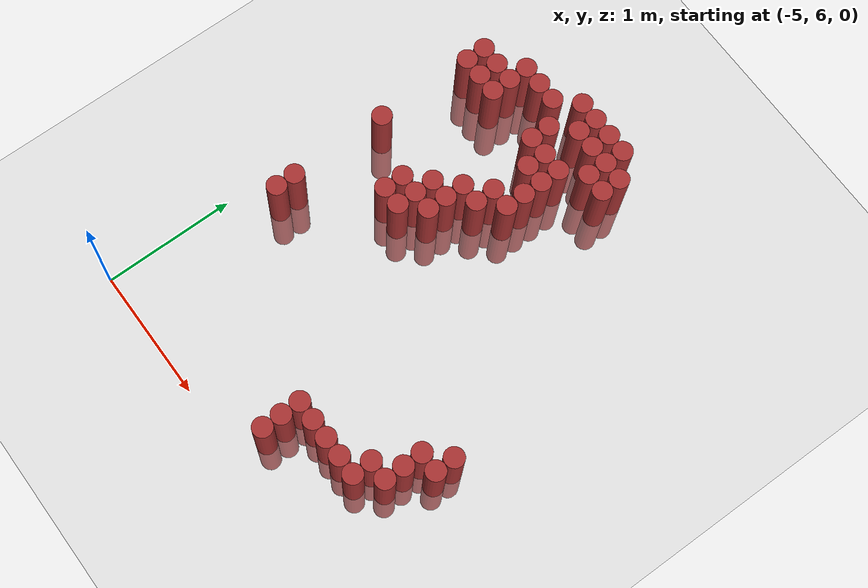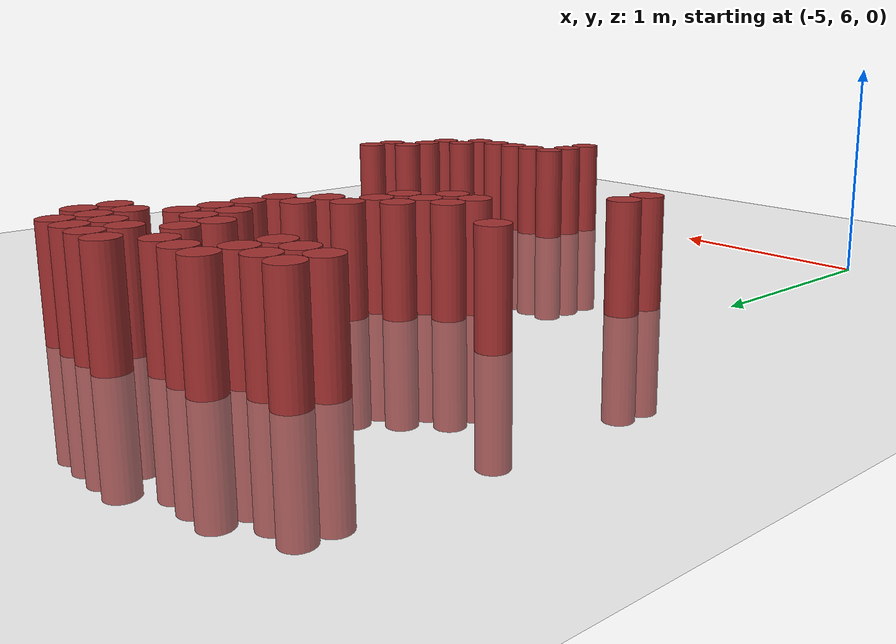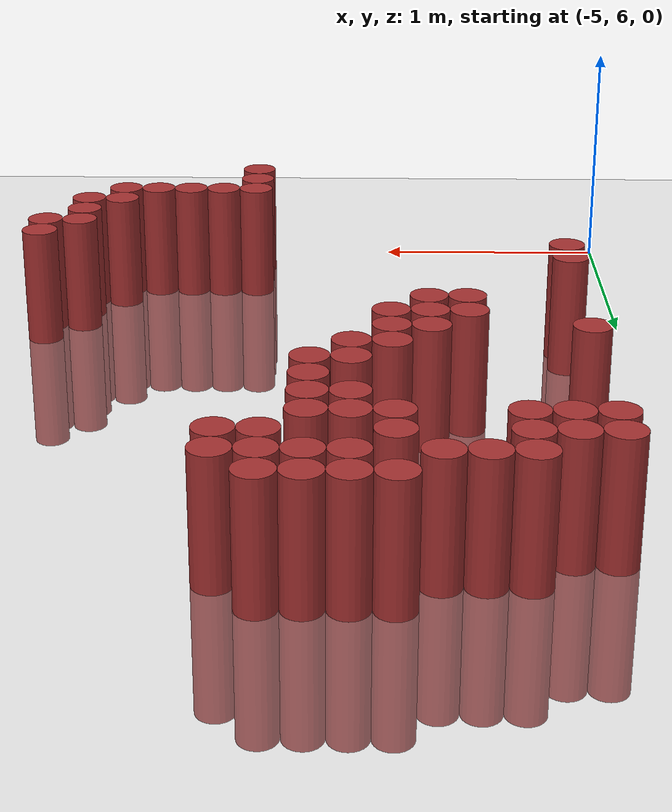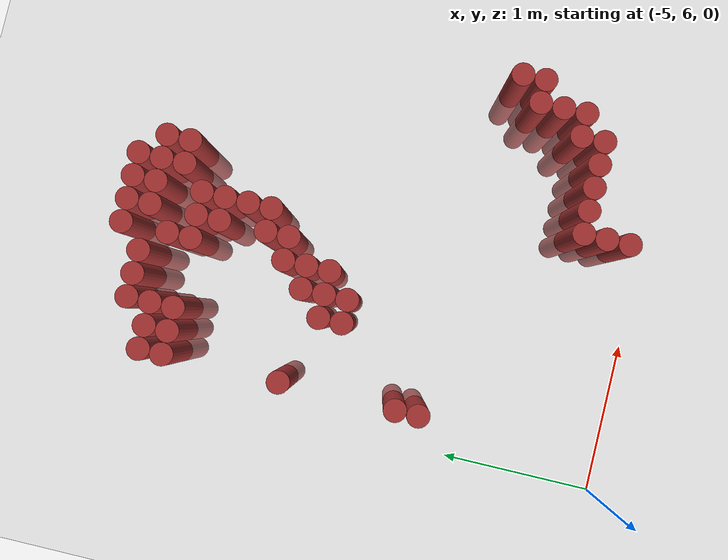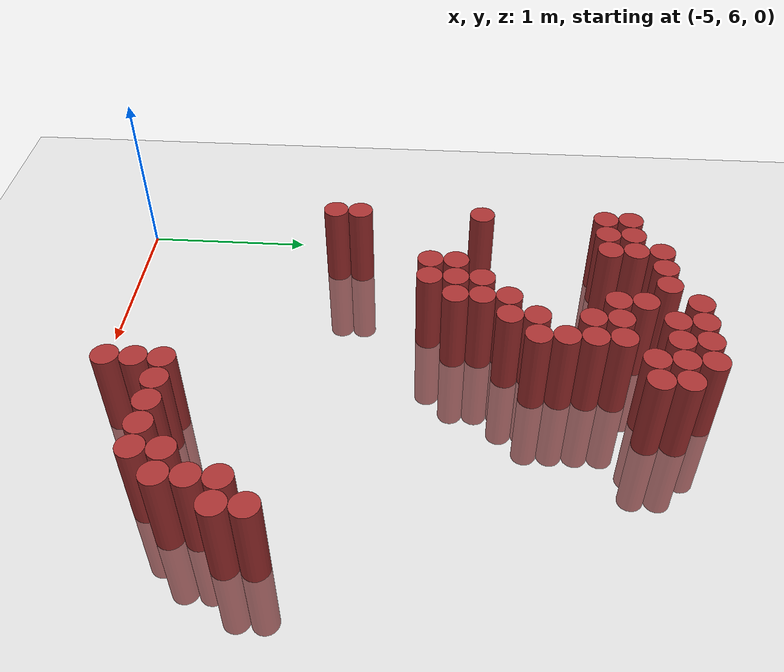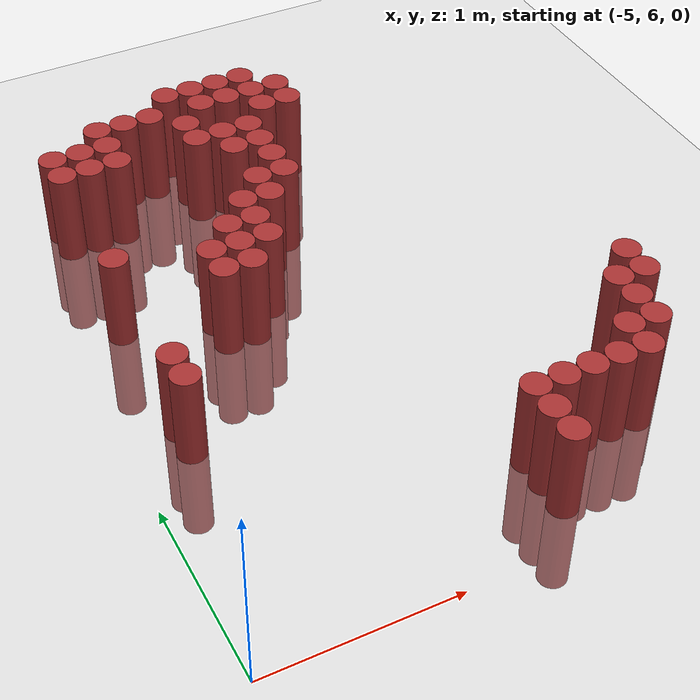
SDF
<sdf version="1.6">
 <world name="default">
  <model name="ground_plane">
   <static>1</static>
   <link name="link">
    <collision name="collision">
     <geometry><plane><normal>0 0 1</normal><size>100 100</size></plane></geometry>
     <surface><friction><ode><mu>100</mu><mu2>50</mu2></ode></friction></surface>
    </collision>
    <visual name="visual">
     <cast_shadows>0</cast_shadows>
     <geometry><plane><normal>0 0 1</normal><size>100 100</size></plane></geometry>
     <material>
      <script><uri>file://media/materials/scripts/gazebo.material</uri><name>Gazebo/Grey</name></script>
     </material>
    </visual>
   </link>
  </model>
  <model name="unit_cylinder_272">
   <static>1</static>
   <pose>-4.725000 7.275000 0.000000 0.000000 0.000000 0.000000</pose>
   <link name="link">
    <inertial>
     <mass>1</mass>
     <inertia><ixx>0.145833</ixx><ixy>0</ixy><ixz>0</ixz><iyy>0.145833</iyy><iyz>0</iyz><izz>0.125</izz></inertia>
    </inertial>
    <collision name="collision">
     <geometry><cylinder><radius>0.075000</radius><length>1</length></cylinder></geometry>
    </collision>
    <visual name="visual">
     <geometry><cylinder><radius>0.075000</radius><length>1</length></cylinder></geometry>
     <material>
      <ambient>0.648000 0.192000 0.192000 1</ambient>
      <diffuse>0.648000 0.192000 0.192000 1</diffuse>
     </material>
     <material>
      <script><name>Gazebo/Grey</name><uri>file://media/materials/scripts/gazebo.material</uri></script>
     </material>
    </visual>
   </link>
  </model>
  <model name="unit_cylinder_273">
   <static>1</static>
   <pose>-4.725000 7.425000 0.000000 0.000000 0.000000 0.000000</pose>
   <link name="link">
    <inertial>
     <mass>1</mass>
     <inertia><ixx>0.145833</ixx><ixy>0</ixy><ixz>0</ixz><iyy>0.145833</iyy><iyz>0</iyz><izz>0.125</izz></inertia>
    </inertial>
    <collision name="collision">
     <geometry><cylinder><radius>0.075000</radius><length>1</length></cylinder></geometry>
    </collision>
    <visual name="visual">
     <geometry><cylinder><radius>0.075000</radius><length>1</length></cylinder></geometry>
     <material>
      <ambient>0.648000 0.192000 0.192000 1</ambient>
      <diffuse>0.648000 0.192000 0.192000 1</diffuse>
     </material>
     <material>
      <script><name>Gazebo/Grey</name><uri>file://media/materials/scripts/gazebo.material</uri></script>
     </material>
    </visual>
   </link>
  </model>
  <model name="unit_cylinder_274">
   <static>1</static>
   <pose>-4.725000 8.175000 0.000000 0.000000 0.000000 0.000000</pose>
   <link name="link">
    <inertial>
     <mass>1</mass>
     <inertia><ixx>0.145833</ixx><ixy>0</ixy><ixz>0</ixz><iyy>0.145833</iyy><iyz>0</iyz><izz>0.125</izz></inertia>
    </inertial>
    <collision name="collision">
     <geometry><cylinder><radius>0.075000</radius><length>1</length></cylinder></geometry>
    </collision>
    <visual name="visual">
     <geometry><cylinder><radius>0.075000</radius><length>1</length></cylinder></geometry>
     <material>
      <ambient>0.648000 0.192000 0.192000 1</ambient>
      <diffuse>0.648000 0.192000 0.192000 1</diffuse>
     </material>
     <material>
      <script><name>Gazebo/Grey</name><uri>file://media/materials/scripts/gazebo.material</uri></script>
     </material>
    </visual>
   </link>
  </model>
  <model name="unit_cylinder_275">
   <static>1</static>
   <pose>-4.725000 8.925000 0.000000 0.000000 0.000000 0.000000</pose>
   <link name="link">
    <inertial>
     <mass>1</mass>
     <inertia><ixx>0.145833</ixx><ixy>0</ixy><ixz>0</ixz><iyy>0.145833</iyy><iyz>0</iyz><izz>0.125</izz></inertia>
    </inertial>
    <collision name="collision">
     <geometry><cylinder><radius>0.075000</radius><length>1</length></cylinder></geometry>
    </collision>
    <visual name="visual">
     <geometry><cylinder><radius>0.075000</radius><length>1</length></cylinder></geometry>
     <material>
      <ambient>0.648000 0.192000 0.192000 1</ambient>
      <diffuse>0.648000 0.192000 0.192000 1</diffuse>
     </material>
     <material>
      <script><name>Gazebo/Grey</name><uri>file://media/materials/scripts/gazebo.material</uri></script>
     </material>
    </visual>
   </link>
  </model>
  <model name="unit_cylinder_276">
   <static>1</static>
   <pose>-4.725000 9.075000 0.000000 0.000000 0.000000 0.000000</pose>
   <link name="link">
    <inertial>
     <mass>1</mass>
     <inertia><ixx>0.145833</ixx><ixy>0</ixy><ixz>0</ixz><iyy>0.145833</iyy><iyz>0</iyz><izz>0.125</izz></inertia>
    </inertial>
    <collision name="collision">
     <geometry><cylinder><radius>0.075000</radius><length>1</length></cylinder></geometry>
    </collision>
    <visual name="visual">
     <geometry><cylinder><radius>0.075000</radius><length>1</length></cylinder></geometry>
     <material>
      <ambient>0.648000 0.192000 0.192000 1</ambient>
      <diffuse>0.648000 0.192000 0.192000 1</diffuse>
     </material>
     <material>
      <script><name>Gazebo/Grey</name><uri>file://media/materials/scripts/gazebo.material</uri></script>
     </material>
    </visual>
   </link>
  </model>
  <model name="unit_cylinder_277">
   <static>1</static>
   <pose>-4.575000 8.925000 0.000000 0.000000 0.000000 0.000000</pose>
   <link name="link">
    <inertial>
     <mass>1</mass>
     <inertia><ixx>0.145833</ixx><ixy>0</ixy><ixz>0</ixz><iyy>0.145833</iyy><iyz>0</iyz><izz>0.125</izz></inertia>
    </inertial>
    <collision name="collision">
     <geometry><cylinder><radius>0.075000</radius><length>1</length></cylinder></geometry>
    </collision>
    <visual name="visual">
     <geometry><cylinder><radius>0.075000</radius><length>1</length></cylinder></geometry>
     <material>
      <ambient>0.648000 0.192000 0.192000 1</ambient>
      <diffuse>0.648000 0.192000 0.192000 1</diffuse>
     </material>
     <material>
      <script><name>Gazebo/Grey</name><uri>file://media/materials/scripts/gazebo.material</uri></script>
     </material>
    </visual>
   </link>
  </model>
  <model name="unit_cylinder_278">
   <static>1</static>
   <pose>-4.575000 9.075000 0.000000 0.000000 0.000000 0.000000</pose>
   <link name="link">
    <inertial>
     <mass>1</mass>
     <inertia><ixx>0.145833</ixx><ixy>0</ixy><ixz>0</ixz><iyy>0.145833</iyy><iyz>0</iyz><izz>0.125</izz></inertia>
    </inertial>
    <collision name="collision">
     <geometry><cylinder><radius>0.075000</radius><length>1</length></cylinder></geometry>
    </collision>
    <visual name="visual">
     <geometry><cylinder><radius>0.075000</radius><length>1</length></cylinder></geometry>
     <material>
      <ambient>0.648000 0.192000 0.192000 1</ambient>
      <diffuse>0.648000 0.192000 0.192000 1</diffuse>
     </material>
     <material>
      <script><name>Gazebo/Grey</name><uri>file://media/materials/scripts/gazebo.material</uri></script>
     </material>
    </visual>
   </link>
  </model>
  <model name="unit_cylinder_279">
   <static>1</static>
   <pose>-4.425000 8.925000 0.000000 0.000000 0.000000 0.000000</pose>
   <link name="link">
    <inertial>
     <mass>1</mass>
     <inertia><ixx>0.145833</ixx><ixy>0</ixy><ixz>0</ixz><iyy>0.145833</iyy><iyz>0</iyz><izz>0.125</izz></inertia>
    </inertial>
    <collision name="collision">
     <geometry><cylinder><radius>0.075000</radius><length>1</length></cylinder></geometry>
    </collision>
    <visual name="visual">
     <geometry><cylinder><radius>0.075000</radius><length>1</length></cylinder></geometry>
     <material>
      <ambient>0.648000 0.192000 0.192000 1</ambient>
      <diffuse>0.648000 0.192000 0.192000 1</diffuse>
     </material>
     <material>
      <script><name>Gazebo/Grey</name><uri>file://media/materials/scripts/gazebo.material</uri></script>
     </material>
    </visual>
   </link>
  </model>
  <model name="unit_cylinder_280">
   <static>1</static>
   <pose>-4.425000 9.075000 0.000000 0.000000 0.000000 0.000000</pose>
   <link name="link">
    <inertial>
     <mass>1</mass>
     <inertia><ixx>0.145833</ixx><ixy>0</ixy><ixz>0</ixz><iyy>0.145833</iyy><iyz>0</iyz><izz>0.125</izz></inertia>
    </inertial>
    <collision name="collision">
     <geometry><cylinder><radius>0.075000</radius><length>1</length></cylinder></geometry>
    </collision>
    <visual name="visual">
     <geometry><cylinder><radius>0.075000</radius><length>1</length></cylinder></geometry>
     <material>
      <ambient>0.648000 0.192000 0.192000 1</ambient>
      <diffuse>0.648000 0.192000 0.192000 1</diffuse>
     </material>
     <material>
      <script><name>Gazebo/Grey</name><uri>file://media/materials/scripts/gazebo.material</uri></script>
     </material>
    </visual>
   </link>
  </model>
  <model name="unit_cylinder_281">
   <static>1</static>
   <pose>-4.425000 9.225000 0.000000 0.000000 0.000000 0.000000</pose>
   <link name="link">
    <inertial>
     <mass>1</mass>
     <inertia><ixx>0.145833</ixx><ixy>0</ixy><ixz>0</ixz><iyy>0.145833</iyy><iyz>0</iyz><izz>0.125</izz></inertia>
    </inertial>
    <collision name="collision">
     <geometry><cylinder><radius>0.075000</radius><length>1</length></cylinder></geometry>
    </collision>
    <visual name="visual">
     <geometry><cylinder><radius>0.075000</radius><length>1</length></cylinder></geometry>
     <material>
      <ambient>0.648000 0.192000 0.192000 1</ambient>
      <diffuse>0.648000 0.192000 0.192000 1</diffuse>
     </material>
     <material>
      <script><name>Gazebo/Grey</name><uri>file://media/materials/scripts/gazebo.material</uri></script>
     </material>
    </visual>
   </link>
  </model>
  <model name="unit_cylinder_284">
   <static>1</static>
   <pose>-4.275000 7.875000 0.000000 0.000000 0.000000 0.000000</pose>
   <link name="link">
    <inertial>
     <mass>1</mass>
     <inertia><ixx>0.145833</ixx><ixy>0</ixy><ixz>0</ixz><iyy>0.145833</iyy><iyz>0</iyz><izz>0.125</izz></inertia>
    </inertial>
    <collision name="collision">
     <geometry><cylinder><radius>0.075000</radius><length>1</length></cylinder></geometry>
    </collision>
    <visual name="visual">
     <geometry><cylinder><radius>0.075000</radius><length>1</length></cylinder></geometry>
     <material>
      <ambient>0.648000 0.192000 0.192000 1</ambient>
      <diffuse>0.648000 0.192000 0.192000 1</diffuse>
     </material>
     <material>
      <script><name>Gazebo/Grey</name><uri>file://media/materials/scripts/gazebo.material</uri></script>
     </material>
    </visual>
   </link>
  </model>
  <model name="unit_cylinder_285">
   <static>1</static>
   <pose>-4.275000 8.025000 0.000000 0.000000 0.000000 0.000000</pose>
   <link name="link">
    <inertial>
     <mass>1</mass>
     <inertia><ixx>0.145833</ixx><ixy>0</ixy><ixz>0</ixz><iyy>0.145833</iyy><iyz>0</iyz><izz>0.125</izz></inertia>
    </inertial>
    <collision name="collision">
     <geometry><cylinder><radius>0.075000</radius><length>1</length></cylinder></geometry>
    </collision>
    <visual name="visual">
     <geometry><cylinder><radius>0.075000</radius><length>1</length></cylinder></geometry>
     <material>
      <ambient>0.648000 0.192000 0.192000 1</ambient>
      <diffuse>0.648000 0.192000 0.192000 1</diffuse>
     </material>
     <material>
      <script><name>Gazebo/Grey</name><uri>file://media/materials/scripts/gazebo.material</uri></script>
     </material>
    </visual>
   </link>
  </model>
  <model name="unit_cylinder_286">
   <static>1</static>
   <pose>-4.275000 9.225000 0.000000 0.000000 0.000000 0.000000</pose>
   <link name="link">
    <inertial>
     <mass>1</mass>
     <inertia><ixx>0.145833</ixx><ixy>0</ixy><ixz>0</ixz><iyy>0.145833</iyy><iyz>0</iyz><izz>0.125</izz></inertia>
    </inertial>
    <collision name="collision">
     <geometry><cylinder><radius>0.075000</radius><length>1</length></cylinder></geometry>
    </collision>
    <visual name="visual">
     <geometry><cylinder><radius>0.075000</radius><length>1</length></cylinder></geometry>
     <material>
      <ambient>0.648000 0.192000 0.192000 1</ambient>
      <diffuse>0.648000 0.192000 0.192000 1</diffuse>
     </material>
     <material>
      <script><name>Gazebo/Grey</name><uri>file://media/materials/scripts/gazebo.material</uri></script>
     </material>
    </visual>
   </link>
  </model>
  <model name="unit_cylinder_289">
   <static>1</static>
   <pose>-4.125000 7.875000 0.000000 0.000000 0.000000 0.000000</pose>
   <link name="link">
    <inertial>
     <mass>1</mass>
     <inertia><ixx>0.145833</ixx><ixy>0</ixy><ixz>0</ixz><iyy>0.145833</iyy><iyz>0</iyz><izz>0.125</izz></inertia>
    </inertial>
    <collision name="collision">
     <geometry><cylinder><radius>0.075000</radius><length>1</length></cylinder></geometry>
    </collision>
    <visual name="visual">
     <geometry><cylinder><radius>0.075000</radius><length>1</length></cylinder></geometry>
     <material>
      <ambient>0.648000 0.192000 0.192000 1</ambient>
      <diffuse>0.648000 0.192000 0.192000 1</diffuse>
     </material>
     <material>
      <script><name>Gazebo/Grey</name><uri>file://media/materials/scripts/gazebo.material</uri></script>
     </material>
    </visual>
   </link>
  </model>
  <model name="unit_cylinder_290">
   <static>1</static>
   <pose>-4.125000 8.025000 0.000000 0.000000 0.000000 0.000000</pose>
   <link name="link">
    <inertial>
     <mass>1</mass>
     <inertia><ixx>0.145833</ixx><ixy>0</ixy><ixz>0</ixz><iyy>0.145833</iyy><iyz>0</iyz><izz>0.125</izz></inertia>
    </inertial>
    <collision name="collision">
     <geometry><cylinder><radius>0.075000</radius><length>1</length></cylinder></geometry>
    </collision>
    <visual name="visual">
     <geometry><cylinder><radius>0.075000</radius><length>1</length></cylinder></geometry>
     <material>
      <ambient>0.648000 0.192000 0.192000 1</ambient>
      <diffuse>0.648000 0.192000 0.192000 1</diffuse>
     </material>
     <material>
      <script><name>Gazebo/Grey</name><uri>file://media/materials/scripts/gazebo.material</uri></script>
     </material>
    </visual>
   </link>
  </model>
  <model name="unit_cylinder_291">
   <static>1</static>
   <pose>-4.125000 8.175000 0.000000 0.000000 0.000000 0.000000</pose>
   <link name="link">
    <inertial>
     <mass>1</mass>
     <inertia><ixx>0.145833</ixx><ixy>0</ixy><ixz>0</ixz><iyy>0.145833</iyy><iyz>0</iyz><izz>0.125</izz></inertia>
    </inertial>
    <collision name="collision">
     <geometry><cylinder><radius>0.075000</radius><length>1</length></cylinder></geometry>
    </collision>
    <visual name="visual">
     <geometry><cylinder><radius>0.075000</radius><length>1</length></cylinder></geometry>
     <material>
      <ambient>0.648000 0.192000 0.192000 1</ambient>
      <diffuse>0.648000 0.192000 0.192000 1</diffuse>
     </material>
     <material>
      <script><name>Gazebo/Grey</name><uri>file://media/materials/scripts/gazebo.material</uri></script>
     </material>
    </visual>
   </link>
  </model>
  <model name="unit_cylinder_292">
   <static>1</static>
   <pose>-4.125000 9.225000 0.000000 0.000000 0.000000 0.000000</pose>
   <link name="link">
    <inertial>
     <mass>1</mass>
     <inertia><ixx>0.145833</ixx><ixy>0</ixy><ixz>0</ixz><iyy>0.145833</iyy><iyz>0</iyz><izz>0.125</izz></inertia>
    </inertial>
    <collision name="collision">
     <geometry><cylinder><radius>0.075000</radius><length>1</length></cylinder></geometry>
    </collision>
    <visual name="visual">
     <geometry><cylinder><radius>0.075000</radius><length>1</length></cylinder></geometry>
     <material>
      <ambient>0.648000 0.192000 0.192000 1</ambient>
      <diffuse>0.648000 0.192000 0.192000 1</diffuse>
     </material>
     <material>
      <script><name>Gazebo/Grey</name><uri>file://media/materials/scripts/gazebo.material</uri></script>
     </material>
    </visual>
   </link>
  </model>
  <model name="unit_cylinder_295">
   <static>1</static>
   <pose>-3.975000 8.025000 0.000000 0.000000 0.000000 0.000000</pose>
   <link name="link">
    <inertial>
     <mass>1</mass>
     <inertia><ixx>0.145833</ixx><ixy>0</ixy><ixz>0</ixz><iyy>0.145833</iyy><iyz>0</iyz><izz>0.125</izz></inertia>
    </inertial>
    <collision name="collision">
     <geometry><cylinder><radius>0.075000</radius><length>1</length></cylinder></geometry>
    </collision>
    <visual name="visual">
     <geometry><cylinder><radius>0.075000</radius><length>1</length></cylinder></geometry>
     <material>
      <ambient>0.648000 0.192000 0.192000 1</ambient>
      <diffuse>0.648000 0.192000 0.192000 1</diffuse>
     </material>
     <material>
      <script><name>Gazebo/Grey</name><uri>file://media/materials/scripts/gazebo.material</uri></script>
     </material>
    </visual>
   </link>
  </model>
  <model name="unit_cylinder_296">
   <static>1</static>
   <pose>-3.975000 8.175000 0.000000 0.000000 0.000000 0.000000</pose>
   <link name="link">
    <inertial>
     <mass>1</mass>
     <inertia><ixx>0.145833</ixx><ixy>0</ixy><ixz>0</ixz><iyy>0.145833</iyy><iyz>0</iyz><izz>0.125</izz></inertia>
    </inertial>
    <collision name="collision">
     <geometry><cylinder><radius>0.075000</radius><length>1</length></cylinder></geometry>
    </collision>
    <visual name="visual">
     <geometry><cylinder><radius>0.075000</radius><length>1</length></cylinder></geometry>
     <material>
      <ambient>0.648000 0.192000 0.192000 1</ambient>
      <diffuse>0.648000 0.192000 0.192000 1</diffuse>
     </material>
     <material>
      <script><name>Gazebo/Grey</name><uri>file://media/materials/scripts/gazebo.material</uri></script>
     </material>
    </visual>
   </link>
  </model>
  <model name="unit_cylinder_297">
   <static>1</static>
   <pose>-3.975000 8.325000 0.000000 0.000000 0.000000 0.000000</pose>
   <link name="link">
    <inertial>
     <mass>1</mass>
     <inertia><ixx>0.145833</ixx><ixy>0</ixy><ixz>0</ixz><iyy>0.145833</iyy><iyz>0</iyz><izz>0.125</izz></inertia>
    </inertial>
    <collision name="collision">
     <geometry><cylinder><radius>0.075000</radius><length>1</length></cylinder></geometry>
    </collision>
    <visual name="visual">
     <geometry><cylinder><radius>0.075000</radius><length>1</length></cylinder></geometry>
     <material>
      <ambient>0.648000 0.192000 0.192000 1</ambient>
      <diffuse>0.648000 0.192000 0.192000 1</diffuse>
     </material>
     <material>
      <script><name>Gazebo/Grey</name><uri>file://media/materials/scripts/gazebo.material</uri></script>
     </material>
    </visual>
   </link>
  </model>
  <model name="unit_cylinder_298">
   <static>1</static>
   <pose>-3.975000 8.925000 0.000000 0.000000 0.000000 0.000000</pose>
   <link name="link">
    <inertial>
     <mass>1</mass>
     <inertia><ixx>0.145833</ixx><ixy>0</ixy><ixz>0</ixz><iyy>0.145833</iyy><iyz>0</iyz><izz>0.125</izz></inertia>
    </inertial>
    <collision name="collision">
     <geometry><cylinder><radius>0.075000</radius><length>1</length></cylinder></geometry>
    </collision>
    <visual name="visual">
     <geometry><cylinder><radius>0.075000</radius><length>1</length></cylinder></geometry>
     <material>
      <ambient>0.648000 0.192000 0.192000 1</ambient>
      <diffuse>0.648000 0.192000 0.192000 1</diffuse>
     </material>
     <material>
      <script><name>Gazebo/Grey</name><uri>file://media/materials/scripts/gazebo.material</uri></script>
     </material>
    </visual>
   </link>
  </model>
  <model name="unit_cylinder_299">
   <static>1</static>
   <pose>-3.975000 9.075000 0.000000 0.000000 0.000000 0.000000</pose>
   <link name="link">
    <inertial>
     <mass>1</mass>
     <inertia><ixx>0.145833</ixx><ixy>0</ixy><ixz>0</ixz><iyy>0.145833</iyy><iyz>0</iyz><izz>0.125</izz></inertia>
    </inertial>
    <collision name="collision">
     <geometry><cylinder><radius>0.075000</radius><length>1</length></cylinder></geometry>
    </collision>
    <visual name="visual">
     <geometry><cylinder><radius>0.075000</radius><length>1</length></cylinder></geometry>
     <material>
      <ambient>0.648000 0.192000 0.192000 1</ambient>
      <diffuse>0.648000 0.192000 0.192000 1</diffuse>
     </material>
     <material>
      <script><name>Gazebo/Grey</name><uri>file://media/materials/scripts/gazebo.material</uri></script>
     </material>
    </visual>
   </link>
  </model>
  <model name="unit_cylinder_300">
   <static>1</static>
   <pose>-3.975000 9.375000 0.000000 0.000000 0.000000 0.000000</pose>
   <link name="link">
    <inertial>
     <mass>1</mass>
     <inertia><ixx>0.145833</ixx><ixy>0</ixy><ixz>0</ixz><iyy>0.145833</iyy><iyz>0</iyz><izz>0.125</izz></inertia>
    </inertial>
    <collision name="collision">
     <geometry><cylinder><radius>0.075000</radius><length>1</length></cylinder></geometry>
    </collision>
    <visual name="visual">
     <geometry><cylinder><radius>0.075000</radius><length>1</length></cylinder></geometry>
     <material>
      <ambient>0.648000 0.192000 0.192000 1</ambient>
      <diffuse>0.648000 0.192000 0.192000 1</diffuse>
     </material>
     <material>
      <script><name>Gazebo/Grey</name><uri>file://media/materials/scripts/gazebo.material</uri></script>
     </material>
    </visual>
   </link>
  </model>
  <model name="unit_cylinder_304">
   <static>1</static>
   <pose>-3.825000 8.325000 0.000000 0.000000 0.000000 0.000000</pose>
   <link name="link">
    <inertial>
     <mass>1</mass>
     <inertia><ixx>0.145833</ixx><ixy>0</ixy><ixz>0</ixz><iyy>0.145833</iyy><iyz>0</iyz><izz>0.125</izz></inertia>
    </inertial>
    <collision name="collision">
     <geometry><cylinder><radius>0.075000</radius><length>1</length></cylinder></geometry>
    </collision>
    <visual name="visual">
     <geometry><cylinder><radius>0.075000</radius><length>1</length></cylinder></geometry>
     <material>
      <ambient>0.648000 0.192000 0.192000 1</ambient>
      <diffuse>0.648000 0.192000 0.192000 1</diffuse>
     </material>
     <material>
      <script><name>Gazebo/Grey</name><uri>file://media/materials/scripts/gazebo.material</uri></script>
     </material>
    </visual>
   </link>
  </model>
  <model name="unit_cylinder_305">
   <static>1</static>
   <pose>-3.825000 8.475000 0.000000 0.000000 0.000000 0.000000</pose>
   <link name="link">
    <inertial>
     <mass>1</mass>
     <inertia><ixx>0.145833</ixx><ixy>0</ixy><ixz>0</ixz><iyy>0.145833</iyy><iyz>0</iyz><izz>0.125</izz></inertia>
    </inertial>
    <collision name="collision">
     <geometry><cylinder><radius>0.075000</radius><length>1</length></cylinder></geometry>
    </collision>
    <visual name="visual">
     <geometry><cylinder><radius>0.075000</radius><length>1</length></cylinder></geometry>
     <material>
      <ambient>0.648000 0.192000 0.192000 1</ambient>
      <diffuse>0.648000 0.192000 0.192000 1</diffuse>
     </material>
     <material>
      <script><name>Gazebo/Grey</name><uri>file://media/materials/scripts/gazebo.material</uri></script>
     </material>
    </visual>
   </link>
  </model>
  <model name="unit_cylinder_306">
   <static>1</static>
   <pose>-3.825000 8.775000 0.000000 0.000000 0.000000 0.000000</pose>
   <link name="link">
    <inertial>
     <mass>1</mass>
     <inertia><ixx>0.145833</ixx><ixy>0</ixy><ixz>0</ixz><iyy>0.145833</iyy><iyz>0</iyz><izz>0.125</izz></inertia>
    </inertial>
    <collision name="collision">
     <geometry><cylinder><radius>0.075000</radius><length>1</length></cylinder></geometry>
    </collision>
    <visual name="visual">
     <geometry><cylinder><radius>0.075000</radius><length>1</length></cylinder></geometry>
     <material>
      <ambient>0.648000 0.192000 0.192000 1</ambient>
      <diffuse>0.648000 0.192000 0.192000 1</diffuse>
     </material>
     <material>
      <script><name>Gazebo/Grey</name><uri>file://media/materials/scripts/gazebo.material</uri></script>
     </material>
    </visual>
   </link>
  </model>
  <model name="unit_cylinder_307">
   <static>1</static>
   <pose>-3.825000 8.925000 0.000000 0.000000 0.000000 0.000000</pose>
   <link name="link">
    <inertial>
     <mass>1</mass>
     <inertia><ixx>0.145833</ixx><ixy>0</ixy><ixz>0</ixz><iyy>0.145833</iyy><iyz>0</iyz><izz>0.125</izz></inertia>
    </inertial>
    <collision name="collision">
     <geometry><cylinder><radius>0.075000</radius><length>1</length></cylinder></geometry>
    </collision>
    <visual name="visual">
     <geometry><cylinder><radius>0.075000</radius><length>1</length></cylinder></geometry>
     <material>
      <ambient>0.648000 0.192000 0.192000 1</ambient>
      <diffuse>0.648000 0.192000 0.192000 1</diffuse>
     </material>
     <material>
      <script><name>Gazebo/Grey</name><uri>file://media/materials/scripts/gazebo.material</uri></script>
     </material>
    </visual>
   </link>
  </model>
  <model name="unit_cylinder_308">
   <static>1</static>
   <pose>-3.825000 9.225000 0.000000 0.000000 0.000000 0.000000</pose>
   <link name="link">
    <inertial>
     <mass>1</mass>
     <inertia><ixx>0.145833</ixx><ixy>0</ixy><ixz>0</ixz><iyy>0.145833</iyy><iyz>0</iyz><izz>0.125</izz></inertia>
    </inertial>
    <collision name="collision">
     <geometry><cylinder><radius>0.075000</radius><length>1</length></cylinder></geometry>
    </collision>
    <visual name="visual">
     <geometry><cylinder><radius>0.075000</radius><length>1</length></cylinder></geometry>
     <material>
      <ambient>0.648000 0.192000 0.192000 1</ambient>
      <diffuse>0.648000 0.192000 0.192000 1</diffuse>
     </material>
     <material>
      <script><name>Gazebo/Grey</name><uri>file://media/materials/scripts/gazebo.material</uri></script>
     </material>
    </visual>
   </link>
  </model>
  <model name="unit_cylinder_309">
   <static>1</static>
   <pose>-3.825000 9.375000 0.000000 0.000000 0.000000 0.000000</pose>
   <link name="link">
    <inertial>
     <mass>1</mass>
     <inertia><ixx>0.145833</ixx><ixy>0</ixy><ixz>0</ixz><iyy>0.145833</iyy><iyz>0</iyz><izz>0.125</izz></inertia>
    </inertial>
    <collision name="collision">
     <geometry><cylinder><radius>0.075000</radius><length>1</length></cylinder></geometry>
    </collision>
    <visual name="visual">
     <geometry><cylinder><radius>0.075000</radius><length>1</length></cylinder></geometry>
     <material>
      <ambient>0.648000 0.192000 0.192000 1</ambient>
      <diffuse>0.648000 0.192000 0.192000 1</diffuse>
     </material>
     <material>
      <script><name>Gazebo/Grey</name><uri>file://media/materials/scripts/gazebo.material</uri></script>
     </material>
    </visual>
   </link>
  </model>
  <model name="unit_cylinder_313">
   <static>1</static>
   <pose>-3.675000 8.475000 0.000000 0.000000 0.000000 0.000000</pose>
   <link name="link">
    <inertial>
     <mass>1</mass>
     <inertia><ixx>0.145833</ixx><ixy>0</ixy><ixz>0</ixz><iyy>0.145833</iyy><iyz>0</iyz><izz>0.125</izz></inertia>
    </inertial>
    <collision name="collision">
     <geometry><cylinder><radius>0.075000</radius><length>1</length></cylinder></geometry>
    </collision>
    <visual name="visual">
     <geometry><cylinder><radius>0.075000</radius><length>1</length></cylinder></geometry>
     <material>
      <ambient>0.648000 0.192000 0.192000 1</ambient>
      <diffuse>0.648000 0.192000 0.192000 1</diffuse>
     </material>
     <material>
      <script><name>Gazebo/Grey</name><uri>file://media/materials/scripts/gazebo.material</uri></script>
     </material>
    </visual>
   </link>
  </model>
  <model name="unit_cylinder_314">
   <static>1</static>
   <pose>-3.675000 8.625000 0.000000 0.000000 0.000000 0.000000</pose>
   <link name="link">
    <inertial>
     <mass>1</mass>
     <inertia><ixx>0.145833</ixx><ixy>0</ixy><ixz>0</ixz><iyy>0.145833</iyy><iyz>0</iyz><izz>0.125</izz></inertia>
    </inertial>
    <collision name="collision">
     <geometry><cylinder><radius>0.075000</radius><length>1</length></cylinder></geometry>
    </collision>
    <visual name="visual">
     <geometry><cylinder><radius>0.075000</radius><length>1</length></cylinder></geometry>
     <material>
      <ambient>0.648000 0.192000 0.192000 1</ambient>
      <diffuse>0.648000 0.192000 0.192000 1</diffuse>
     </material>
     <material>
      <script><name>Gazebo/Grey</name><uri>file://media/materials/scripts/gazebo.material</uri></script>
     </material>
    </visual>
   </link>
  </model>
  <model name="unit_cylinder_315">
   <static>1</static>
   <pose>-3.675000 8.775000 0.000000 0.000000 0.000000 0.000000</pose>
   <link name="link">
    <inertial>
     <mass>1</mass>
     <inertia><ixx>0.145833</ixx><ixy>0</ixy><ixz>0</ixz><iyy>0.145833</iyy><iyz>0</iyz><izz>0.125</izz></inertia>
    </inertial>
    <collision name="collision">
     <geometry><cylinder><radius>0.075000</radius><length>1</length></cylinder></geometry>
    </collision>
    <visual name="visual">
     <geometry><cylinder><radius>0.075000</radius><length>1</length></cylinder></geometry>
     <material>
      <ambient>0.648000 0.192000 0.192000 1</ambient>
      <diffuse>0.648000 0.192000 0.192000 1</diffuse>
     </material>
     <material>
      <script><name>Gazebo/Grey</name><uri>file://media/materials/scripts/gazebo.material</uri></script>
     </material>
    </visual>
   </link>
  </model>
  <model name="unit_cylinder_316">
   <static>1</static>
   <pose>-3.675000 8.925000 0.000000 0.000000 0.000000 0.000000</pose>
   <link name="link">
    <inertial>
     <mass>1</mass>
     <inertia><ixx>0.145833</ixx><ixy>0</ixy><ixz>0</ixz><iyy>0.145833</iyy><iyz>0</iyz><izz>0.125</izz></inertia>
    </inertial>
    <collision name="collision">
     <geometry><cylinder><radius>0.075000</radius><length>1</length></cylinder></geometry>
    </collision>
    <visual name="visual">
     <geometry><cylinder><radius>0.075000</radius><length>1</length></cylinder></geometry>
     <material>
      <ambient>0.648000 0.192000 0.192000 1</ambient>
      <diffuse>0.648000 0.192000 0.192000 1</diffuse>
     </material>
     <material>
      <script><name>Gazebo/Grey</name><uri>file://media/materials/scripts/gazebo.material</uri></script>
     </material>
    </visual>
   </link>
  </model>
  <model name="unit_cylinder_317">
   <static>1</static>
   <pose>-3.675000 9.225000 0.000000 0.000000 0.000000 0.000000</pose>
   <link name="link">
    <inertial>
     <mass>1</mass>
     <inertia><ixx>0.145833</ixx><ixy>0</ixy><ixz>0</ixz><iyy>0.145833</iyy><iyz>0</iyz><izz>0.125</izz></inertia>
    </inertial>
    <collision name="collision">
     <geometry><cylinder><radius>0.075000</radius><length>1</length></cylinder></geometry>
    </collision>
    <visual name="visual">
     <geometry><cylinder><radius>0.075000</radius><length>1</length></cylinder></geometry>
     <material>
      <ambient>0.648000 0.192000 0.192000 1</ambient>
      <diffuse>0.648000 0.192000 0.192000 1</diffuse>
     </material>
     <material>
      <script><name>Gazebo/Grey</name><uri>file://media/materials/scripts/gazebo.material</uri></script>
     </material>
    </visual>
   </link>
  </model>
  <model name="unit_cylinder_318">
   <static>1</static>
   <pose>-3.675000 9.375000 0.000000 0.000000 0.000000 0.000000</pose>
   <link name="link">
    <inertial>
     <mass>1</mass>
     <inertia><ixx>0.145833</ixx><ixy>0</ixy><ixz>0</ixz><iyy>0.145833</iyy><iyz>0</iyz><izz>0.125</izz></inertia>
    </inertial>
    <collision name="collision">
     <geometry><cylinder><radius>0.075000</radius><length>1</length></cylinder></geometry>
    </collision>
    <visual name="visual">
     <geometry><cylinder><radius>0.075000</radius><length>1</length></cylinder></geometry>
     <material>
      <ambient>0.648000 0.192000 0.192000 1</ambient>
      <diffuse>0.648000 0.192000 0.192000 1</diffuse>
     </material>
     <material>
      <script><name>Gazebo/Grey</name><uri>file://media/materials/scripts/gazebo.material</uri></script>
     </material>
    </visual>
   </link>
  </model>
  <model name="unit_cylinder_322">
   <static>1</static>
   <pose>-3.525000 9.075000 0.000000 0.000000 0.000000 0.000000</pose>
   <link name="link">
    <inertial>
     <mass>1</mass>
     <inertia><ixx>0.145833</ixx><ixy>0</ixy><ixz>0</ixz><iyy>0.145833</iyy><iyz>0</iyz><izz>0.125</izz></inertia>
    </inertial>
    <collision name="collision">
     <geometry><cylinder><radius>0.075000</radius><length>1</length></cylinder></geometry>
    </collision>
    <visual name="visual">
     <geometry><cylinder><radius>0.075000</radius><length>1</length></cylinder></geometry>
     <material>
      <ambient>0.648000 0.192000 0.192000 1</ambient>
      <diffuse>0.648000 0.192000 0.192000 1</diffuse>
     </material>
     <material>
      <script><name>Gazebo/Grey</name><uri>file://media/materials/scripts/gazebo.material</uri></script>
     </material>
    </visual>
   </link>
  </model>
  <model name="unit_cylinder_323">
   <static>1</static>
   <pose>-3.525000 9.225000 0.000000 0.000000 0.000000 0.000000</pose>
   <link name="link">
    <inertial>
     <mass>1</mass>
     <inertia><ixx>0.145833</ixx><ixy>0</ixy><ixz>0</ixz><iyy>0.145833</iyy><iyz>0</iyz><izz>0.125</izz></inertia>
    </inertial>
    <collision name="collision">
     <geometry><cylinder><radius>0.075000</radius><length>1</length></cylinder></geometry>
    </collision>
    <visual name="visual">
     <geometry><cylinder><radius>0.075000</radius><length>1</length></cylinder></geometry>
     <material>
      <ambient>0.648000 0.192000 0.192000 1</ambient>
      <diffuse>0.648000 0.192000 0.192000 1</diffuse>
     </material>
     <material>
      <script><name>Gazebo/Grey</name><uri>file://media/materials/scripts/gazebo.material</uri></script>
     </material>
    </visual>
   </link>
  </model>
  <model name="unit_cylinder_324">
   <static>1</static>
   <pose>-3.525000 9.375000 0.000000 0.000000 0.000000 0.000000</pose>
   <link name="link">
    <inertial>
     <mass>1</mass>
     <inertia><ixx>0.145833</ixx><ixy>0</ixy><ixz>0</ixz><iyy>0.145833</iyy><iyz>0</iyz><izz>0.125</izz></inertia>
    </inertial>
    <collision name="collision">
     <geometry><cylinder><radius>0.075000</radius><length>1</length></cylinder></geometry>
    </collision>
    <visual name="visual">
     <geometry><cylinder><radius>0.075000</radius><length>1</length></cylinder></geometry>
     <material>
      <ambient>0.648000 0.192000 0.192000 1</ambient>
      <diffuse>0.648000 0.192000 0.192000 1</diffuse>
     </material>
     <material>
      <script><name>Gazebo/Grey</name><uri>file://media/materials/scripts/gazebo.material</uri></script>
     </material>
    </visual>
   </link>
  </model>
  <model name="unit_cylinder_329">
   <static>1</static>
   <pose>-3.375000 6.225000 0.000000 0.000000 0.000000 0.000000</pose>
   <link name="link">
    <inertial>
     <mass>1</mass>
     <inertia><ixx>0.145833</ixx><ixy>0</ixy><ixz>0</ixz><iyy>0.145833</iyy><iyz>0</iyz><izz>0.125</izz></inertia>
    </inertial>
    <collision name="collision">
     <geometry><cylinder><radius>0.075000</radius><length>1</length></cylinder></geometry>
    </collision>
    <visual name="visual">
     <geometry><cylinder><radius>0.075000</radius><length>1</length></cylinder></geometry>
     <material>
      <ambient>0.648000 0.192000 0.192000 1</ambient>
      <diffuse>0.648000 0.192000 0.192000 1</diffuse>
     </material>
     <material>
      <script><name>Gazebo/Grey</name><uri>file://media/materials/scripts/gazebo.material</uri></script>
     </material>
    </visual>
   </link>
  </model>
  <model name="unit_cylinder_330">
   <static>1</static>
   <pose>-3.375000 6.375000 0.000000 0.000000 0.000000 0.000000</pose>
   <link name="link">
    <inertial>
     <mass>1</mass>
     <inertia><ixx>0.145833</ixx><ixy>0</ixy><ixz>0</ixz><iyy>0.145833</iyy><iyz>0</iyz><izz>0.125</izz></inertia>
    </inertial>
    <collision name="collision">
     <geometry><cylinder><radius>0.075000</radius><length>1</length></cylinder></geometry>
    </collision>
    <visual name="visual">
     <geometry><cylinder><radius>0.075000</radius><length>1</length></cylinder></geometry>
     <material>
      <ambient>0.648000 0.192000 0.192000 1</ambient>
      <diffuse>0.648000 0.192000 0.192000 1</diffuse>
     </material>
     <material>
      <script><name>Gazebo/Grey</name><uri>file://media/materials/scripts/gazebo.material</uri></script>
     </material>
    </visual>
   </link>
  </model>
  <model name="unit_cylinder_331">
   <static>1</static>
   <pose>-3.375000 6.525000 0.000000 0.000000 0.000000 0.000000</pose>
   <link name="link">
    <inertial>
     <mass>1</mass>
     <inertia><ixx>0.145833</ixx><ixy>0</ixy><ixz>0</ixz><iyy>0.145833</iyy><iyz>0</iyz><izz>0.125</izz></inertia>
    </inertial>
    <collision name="collision">
     <geometry><cylinder><radius>0.075000</radius><length>1</length></cylinder></geometry>
    </collision>
    <visual name="visual">
     <geometry><cylinder><radius>0.075000</radius><length>1</length></cylinder></geometry>
     <material>
      <ambient>0.648000 0.192000 0.192000 1</ambient>
      <diffuse>0.648000 0.192000 0.192000 1</diffuse>
     </material>
     <material>
      <script><name>Gazebo/Grey</name><uri>file://media/materials/scripts/gazebo.material</uri></script>
     </material>
    </visual>
   </link>
  </model>
  <model name="unit_cylinder_332">
   <static>1</static>
   <pose>-3.375000 9.075000 0.000000 0.000000 0.000000 0.000000</pose>
   <link name="link">
    <inertial>
     <mass>1</mass>
     <inertia><ixx>0.145833</ixx><ixy>0</ixy><ixz>0</ixz><iyy>0.145833</iyy><iyz>0</iyz><izz>0.125</izz></inertia>
    </inertial>
    <collision name="collision">
     <geometry><cylinder><radius>0.075000</radius><length>1</length></cylinder></geometry>
    </collision>
    <visual name="visual">
     <geometry><cylinder><radius>0.075000</radius><length>1</length></cylinder></geometry>
     <material>
      <ambient>0.648000 0.192000 0.192000 1</ambient>
      <diffuse>0.648000 0.192000 0.192000 1</diffuse>
     </material>
     <material>
      <script><name>Gazebo/Grey</name><uri>file://media/materials/scripts/gazebo.material</uri></script>
     </material>
    </visual>
   </link>
  </model>
  <model name="unit_cylinder_333">
   <static>1</static>
   <pose>-3.375000 9.225000 0.000000 0.000000 0.000000 0.000000</pose>
   <link name="link">
    <inertial>
     <mass>1</mass>
     <inertia><ixx>0.145833</ixx><ixy>0</ixy><ixz>0</ixz><iyy>0.145833</iyy><iyz>0</iyz><izz>0.125</izz></inertia>
    </inertial>
    <collision name="collision">
     <geometry><cylinder><radius>0.075000</radius><length>1</length></cylinder></geometry>
    </collision>
    <visual name="visual">
     <geometry><cylinder><radius>0.075000</radius><length>1</length></cylinder></geometry>
     <material>
      <ambient>0.648000 0.192000 0.192000 1</ambient>
      <diffuse>0.648000 0.192000 0.192000 1</diffuse>
     </material>
     <material>
      <script><name>Gazebo/Grey</name><uri>file://media/materials/scripts/gazebo.material</uri></script>
     </material>
    </visual>
   </link>
  </model>
  <model name="unit_cylinder_335">
   <static>1</static>
   <pose>-3.225000 6.525000 0.000000 0.000000 0.000000 0.000000</pose>
   <link name="link">
    <inertial>
     <mass>1</mass>
     <inertia><ixx>0.145833</ixx><ixy>0</ixy><ixz>0</ixz><iyy>0.145833</iyy><iyz>0</iyz><izz>0.125</izz></inertia>
    </inertial>
    <collision name="collision">
     <geometry><cylinder><radius>0.075000</radius><length>1</length></cylinder></geometry>
    </collision>
    <visual name="visual">
     <geometry><cylinder><radius>0.075000</radius><length>1</length></cylinder></geometry>
     <material>
      <ambient>0.648000 0.192000 0.192000 1</ambient>
      <diffuse>0.648000 0.192000 0.192000 1</diffuse>
     </material>
     <material>
      <script><name>Gazebo/Grey</name><uri>file://media/materials/scripts/gazebo.material</uri></script>
     </material>
    </visual>
   </link>
  </model>
  <model name="unit_cylinder_337">
   <static>1</static>
   <pose>-3.075000 6.525000 0.000000 0.000000 0.000000 0.000000</pose>
   <link name="link">
    <inertial>
     <mass>1</mass>
     <inertia><ixx>0.145833</ixx><ixy>0</ixy><ixz>0</ixz><iyy>0.145833</iyy><iyz>0</iyz><izz>0.125</izz></inertia>
    </inertial>
    <collision name="collision">
     <geometry><cylinder><radius>0.075000</radius><length>1</length></cylinder></geometry>
    </collision>
    <visual name="visual">
     <geometry><cylinder><radius>0.075000</radius><length>1</length></cylinder></geometry>
     <material>
      <ambient>0.648000 0.192000 0.192000 1</ambient>
      <diffuse>0.648000 0.192000 0.192000 1</diffuse>
     </material>
     <material>
      <script><name>Gazebo/Grey</name><uri>file://media/materials/scripts/gazebo.material</uri></script>
     </material>
    </visual>
   </link>
  </model>
  <model name="unit_cylinder_339">
   <static>1</static>
   <pose>-2.925000 6.525000 0.000000 0.000000 0.000000 0.000000</pose>
   <link name="link">
    <inertial>
     <mass>1</mass>
     <inertia><ixx>0.145833</ixx><ixy>0</ixy><ixz>0</ixz><iyy>0.145833</iyy><iyz>0</iyz><izz>0.125</izz></inertia>
    </inertial>
    <collision name="collision">
     <geometry><cylinder><radius>0.075000</radius><length>1</length></cylinder></geometry>
    </collision>
    <visual name="visual">
     <geometry><cylinder><radius>0.075000</radius><length>1</length></cylinder></geometry>
     <material>
      <ambient>0.648000 0.192000 0.192000 1</ambient>
      <diffuse>0.648000 0.192000 0.192000 1</diffuse>
     </material>
     <material>
      <script><name>Gazebo/Grey</name><uri>file://media/materials/scripts/gazebo.material</uri></script>
     </material>
    </visual>
   </link>
  </model>
  <model name="unit_cylinder_341">
   <static>1</static>
   <pose>-2.775000 6.525000 0.000000 0.000000 0.000000 0.000000</pose>
   <link name="link">
    <inertial>
     <mass>1</mass>
     <inertia><ixx>0.145833</ixx><ixy>0</ixy><ixz>0</ixz><iyy>0.145833</iyy><iyz>0</iyz><izz>0.125</izz></inertia>
    </inertial>
    <collision name="collision">
     <geometry><cylinder><radius>0.075000</radius><length>1</length></cylinder></geometry>
    </collision>
    <visual name="visual">
     <geometry><cylinder><radius>0.075000</radius><length>1</length></cylinder></geometry>
     <material>
      <ambient>0.648000 0.192000 0.192000 1</ambient>
      <diffuse>0.648000 0.192000 0.192000 1</diffuse>
     </material>
     <material>
      <script><name>Gazebo/Grey</name><uri>file://media/materials/scripts/gazebo.material</uri></script>
     </material>
    </visual>
   </link>
  </model>
  <model name="unit_cylinder_342">
   <static>1</static>
   <pose>-2.775000 6.675000 0.000000 0.000000 0.000000 0.000000</pose>
   <link name="link">
    <inertial>
     <mass>1</mass>
     <inertia><ixx>0.145833</ixx><ixy>0</ixy><ixz>0</ixz><iyy>0.145833</iyy><iyz>0</iyz><izz>0.125</izz></inertia>
    </inertial>
    <collision name="collision">
     <geometry><cylinder><radius>0.075000</radius><length>1</length></cylinder></geometry>
    </collision>
    <visual name="visual">
     <geometry><cylinder><radius>0.075000</radius><length>1</length></cylinder></geometry>
     <material>
      <ambient>0.648000 0.192000 0.192000 1</ambient>
      <diffuse>0.648000 0.192000 0.192000 1</diffuse>
     </material>
     <material>
      <script><name>Gazebo/Grey</name><uri>file://media/materials/scripts/gazebo.material</uri></script>
     </material>
    </visual>
   </link>
  </model>
  <model name="unit_cylinder_344">
   <static>1</static>
   <pose>-2.625000 6.675000 0.000000 0.000000 0.000000 0.000000</pose>
   <link name="link">
    <inertial>
     <mass>1</mass>
     <inertia><ixx>0.145833</ixx><ixy>0</ixy><ixz>0</ixz><iyy>0.145833</iyy><iyz>0</iyz><izz>0.125</izz></inertia>
    </inertial>
    <collision name="collision">
     <geometry><cylinder><radius>0.075000</radius><length>1</length></cylinder></geometry>
    </collision>
    <visual name="visual">
     <geometry><cylinder><radius>0.075000</radius><length>1</length></cylinder></geometry>
     <material>
      <ambient>0.648000 0.192000 0.192000 1</ambient>
      <diffuse>0.648000 0.192000 0.192000 1</diffuse>
     </material>
     <material>
      <script><name>Gazebo/Grey</name><uri>file://media/materials/scripts/gazebo.material</uri></script>
     </material>
    </visual>
   </link>
  </model>
  <model name="unit_cylinder_345">
   <static>1</static>
   <pose>-2.625000 6.825000 0.000000 0.000000 0.000000 0.000000</pose>
   <link name="link">
    <inertial>
     <mass>1</mass>
     <inertia><ixx>0.145833</ixx><ixy>0</ixy><ixz>0</ixz><iyy>0.145833</iyy><iyz>0</iyz><izz>0.125</izz></inertia>
    </inertial>
    <collision name="collision">
     <geometry><cylinder><radius>0.075000</radius><length>1</length></cylinder></geometry>
    </collision>
    <visual name="visual">
     <geometry><cylinder><radius>0.075000</radius><length>1</length></cylinder></geometry>
     <material>
      <ambient>0.648000 0.192000 0.192000 1</ambient>
      <diffuse>0.648000 0.192000 0.192000 1</diffuse>
     </material>
     <material>
      <script><name>Gazebo/Grey</name><uri>file://media/materials/scripts/gazebo.material</uri></script>
     </material>
    </visual>
   </link>
  </model>
  <model name="unit_cylinder_346">
   <static>1</static>
   <pose>-2.625000 6.975000 0.000000 0.000000 0.000000 0.000000</pose>
   <link name="link">
    <inertial>
     <mass>1</mass>
     <inertia><ixx>0.145833</ixx><ixy>0</ixy><ixz>0</ixz><iyy>0.145833</iyy><iyz>0</iyz><izz>0.125</izz></inertia>
    </inertial>
    <collision name="collision">
     <geometry><cylinder><radius>0.075000</radius><length>1</length></cylinder></geometry>
    </collision>
    <visual name="visual">
     <geometry><cylinder><radius>0.075000</radius><length>1</length></cylinder></geometry>
     <material>
      <ambient>0.648000 0.192000 0.192000 1</ambient>
      <diffuse>0.648000 0.192000 0.192000 1</diffuse>
     </material>
     <material>
      <script><name>Gazebo/Grey</name><uri>file://media/materials/scripts/gazebo.material</uri></script>
     </material>
    </visual>
   </link>
  </model>
  <model name="unit_cylinder_348">
   <static>1</static>
   <pose>-2.475000 6.975000 0.000000 0.000000 0.000000 0.000000</pose>
   <link name="link">
    <inertial>
     <mass>1</mass>
     <inertia><ixx>0.145833</ixx><ixy>0</ixy><ixz>0</ixz><iyy>0.145833</iyy><iyz>0</iyz><izz>0.125</izz></inertia>
    </inertial>
    <collision name="collision">
     <geometry><cylinder><radius>0.075000</radius><length>1</length></cylinder></geometry>
    </collision>
    <visual name="visual">
     <geometry><cylinder><radius>0.075000</radius><length>1</length></cylinder></geometry>
     <material>
      <ambient>0.648000 0.192000 0.192000 1</ambient>
      <diffuse>0.648000 0.192000 0.192000 1</diffuse>
     </material>
     <material>
      <script><name>Gazebo/Grey</name><uri>file://media/materials/scripts/gazebo.material</uri></script>
     </material>
    </visual>
   </link>
  </model>
  <model name="unit_cylinder_349">
   <static>1</static>
   <pose>-2.475000 7.125000 0.000000 0.000000 0.000000 0.000000</pose>
   <link name="link">
    <inertial>
     <mass>1</mass>
     <inertia><ixx>0.145833</ixx><ixy>0</ixy><ixz>0</ixz><iyy>0.145833</iyy><iyz>0</iyz><izz>0.125</izz></inertia>
    </inertial>
    <collision name="collision">
     <geometry><cylinder><radius>0.075000</radius><length>1</length></cylinder></geometry>
    </collision>
    <visual name="visual">
     <geometry><cylinder><radius>0.075000</radius><length>1</length></cylinder></geometry>
     <material>
      <ambient>0.648000 0.192000 0.192000 1</ambient>
      <diffuse>0.648000 0.192000 0.192000 1</diffuse>
     </material>
     <material>
      <script><name>Gazebo/Grey</name><uri>file://media/materials/scripts/gazebo.material</uri></script>
     </material>
    </visual>
   </link>
  </model>
 </world>
</sdf>
